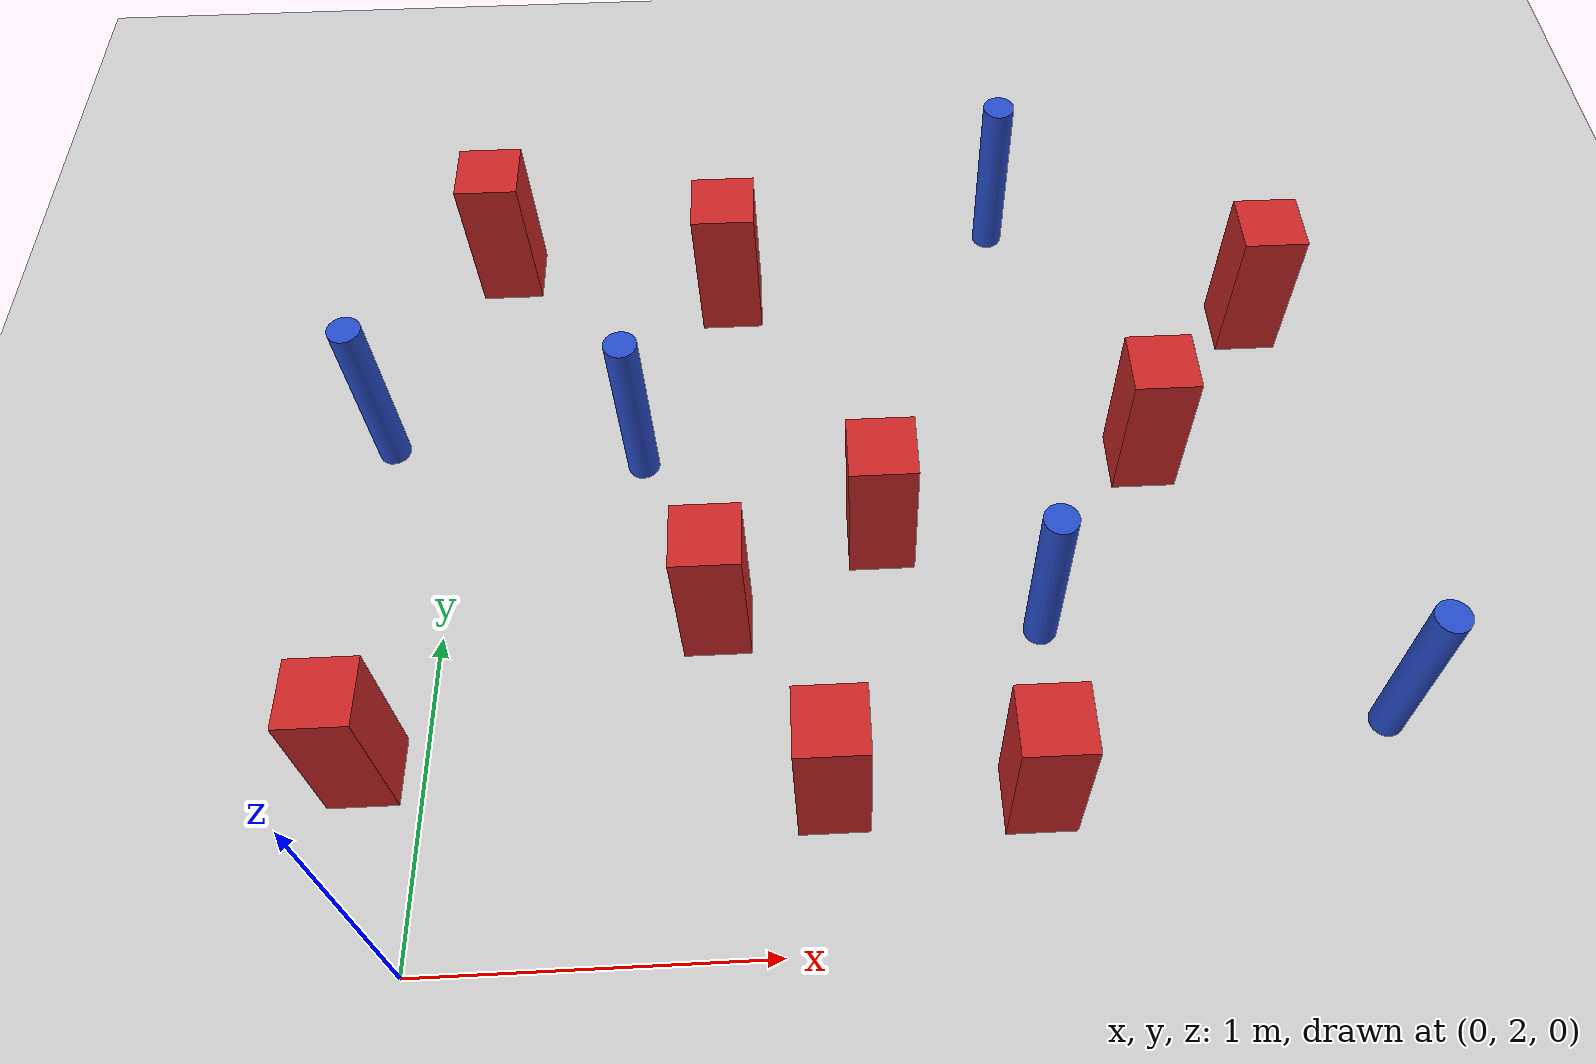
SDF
<sdf version="1.6">
 <world name="default">
  <model name="ground_plane">
   <static>1</static>
   <link name="link">
    <collision name="collision">
     <geometry><plane><normal>0 0 1</normal><size>100 100</size></plane></geometry>
     <surface><friction><ode><mu>100</mu><mu2>50</mu2></ode></friction></surface>
    </collision>
    <visual name="visual">
     <cast_shadows>0</cast_shadows>
     <geometry><plane><normal>0 0 1</normal><size>100 100</size></plane></geometry>
     <material>
      <ambient>1.0 1.0 1.0 1.0</ambient>
      <diffuse>0.8 0.8 0.8 1.0</diffuse>
      <specular>0.01 0.01 0.01 1.000000</specular>
     </material>
    </visual>
   </link>
  </model>
  <model name="square_post_obstacle3">
   <static>true</static>
   <pose>1.3197557422 3.28086362444 1.91545236811e-07 -7.35059704564e-06 1.12565212e-07 2.39332434364e-05</pose>
   <link name="link">
    <pose>0 0 0.25 0 -0 0</pose>
    <inertial>
     <mass>100</mass>
     <inertia>
      <ixx>0.166667</ixx>
      <ixy>0</ixy>
      <ixz>0</ixz>
      <iyy>0.166667</iyy>
      <iyz>0</iyz>
      <izz>0.166667</izz>
     </inertia>
    </inertial>
    <collision name="collision"><geometry><box><size>.2 .2 .5</size></box></geometry></collision>
    <visual name="visual">
     <geometry><box><size>.2 .2 .5</size></box></geometry>
     <material>
      <script><name>Gazebo/Red</name><uri>file://media/materials/scripts/gazebo.material</uri></script>
     </material>
    </visual>
   </link>
  </model>
  <model name="square_post_obstacle18">
   <static>true</static>
   <pose>0.0977057017905 4.46174153704 1.91545236811e-07 -7.35059704564e-06 1.12565212e-07 2.39332434364e-05</pose>
   <link name="link">
    <pose>0 0 0.25 0 -0 0</pose>
    <inertial>
     <mass>100</mass>
     <inertia>
      <ixx>0.166667</ixx>
      <ixy>0</ixy>
      <ixz>0</ixz>
      <iyy>0.166667</iyy>
      <iyz>0</iyz>
      <izz>0.166667</izz>
     </inertia>
    </inertial>
    <collision name="collision"><geometry><box><size>.2 .2 .5</size></box></geometry></collision>
    <visual name="visual">
     <geometry><box><size>.2 .2 .5</size></box></geometry>
     <material>
      <script><name>Gazebo/Red</name><uri>file://media/materials/scripts/gazebo.material</uri></script>
     </material>
    </visual>
   </link>
  </model>
  <model name="pole_obstacle62">
   <static>true</static>
   <pose>1.77789414145 2.94255412521 7.38925637345e-09 -8.47170692799e-08 1.24976765053e-08 -1.74513093017e-07</pose>
   <link name="link">
    <pose>0 0 0.3 0 -0 0</pose>
    <inertial>
     <mass>1</mass>
     <inertia><ixx>0.145833</ixx><ixy>0</ixy><ixz>0</ixz><iyy>0.145833</iyy><iyz>0</iyz><izz>0.125</izz></inertia>
    </inertial>
    <collision name="collision">
     <geometry><cylinder><radius>0.05</radius><length>.6</length></cylinder></geometry>
    </collision>
    <visual name="visual">
     <geometry><cylinder><radius>0.05</radius><length>.6</length></cylinder></geometry>
     <material>
      <script><name>Gazebo/Blue</name><uri>file://media/materials/scripts/gazebo.material</uri></script>
     </material>
    </visual>
   </link>
  </model>
  <model name="pole_obstacle82">
   <static>true</static>
   <pose>2.7356437907 2.59532253878 7.38925637345e-09 -8.47170692798e-08 1.24976764939e-08 -1.74513093025e-07</pose>
   <link name="link">
    <pose>0 0 0.3 0 -0 0</pose>
    <inertial>
     <mass>1</mass>
     <inertia><ixx>0.145833</ixx><ixy>0</ixy><ixz>0</ixz><iyy>0.145833</iyy><iyz>0</iyz><izz>0.125</izz></inertia>
    </inertial>
    <collision name="collision">
     <geometry><cylinder><radius>0.05</radius><length>.6</length></cylinder></geometry>
    </collision>
    <visual name="visual">
     <geometry><cylinder><radius>0.05</radius><length>.6</length></cylinder></geometry>
     <material>
      <script><name>Gazebo/Blue</name><uri>file://media/materials/scripts/gazebo.material</uri></script>
     </material>
    </visual>
   </link>
  </model>
  <model name="square_post_obstacle85">
   <static>true</static>
   <pose>2.60716563349 4.09937180237 1.91545236811e-07 -7.35059704564e-06 1.12565212e-07 2.39332434364e-05</pose>
   <link name="link">
    <pose>0 0 0.25 0 -0 0</pose>
    <inertial>
     <mass>100</mass>
     <inertia>
      <ixx>0.166667</ixx>
      <ixy>0</ixy>
      <ixz>0</ixz>
      <iyy>0.166667</iyy>
      <iyz>0</iyz>
      <izz>0.166667</izz>
     </inertia>
    </inertial>
    <collision name="collision"><geometry><box><size>.2 .2 .5</size></box></geometry></collision>
    <visual name="visual">
     <geometry><box><size>.2 .2 .5</size></box></geometry>
     <material>
      <script><name>Gazebo/Red</name><uri>file://media/materials/scripts/gazebo.material</uri></script>
     </material>
    </visual>
   </link>
  </model>
  <model name="square_post_obstacle86">
   <static>true</static>
   <pose>-0.163066882015 2.58072221107 1.91545236811e-07 -7.35059704564e-06 1.12565212e-07 2.39332434364e-05</pose>
   <link name="link">
    <pose>0 0 0.25 0 -0 0</pose>
    <inertial>
     <mass>100</mass>
     <inertia>
      <ixx>0.166667</ixx>
      <ixy>0</ixy>
      <ixz>0</ixz>
      <iyy>0.166667</iyy>
      <iyz>0</iyz>
      <izz>0.166667</izz>
     </inertia>
    </inertial>
    <collision name="collision"><geometry><box><size>.2 .2 .5</size></box></geometry></collision>
    <visual name="visual">
     <geometry><box><size>.2 .2 .5</size></box></geometry>
     <material>
      <script><name>Gazebo/Red</name><uri>file://media/materials/scripts/gazebo.material</uri></script>
     </material>
    </visual>
   </link>
  </model>
  <model name="pole_obstacle94">
   <static>true</static>
   <pose>1.77930428692 4.56713953124 7.38925637345e-09 -8.47170692799e-08 1.24976765033e-08 -1.74513093018e-07</pose>
   <link name="link">
    <pose>0 0 0.3 0 -0 0</pose>
    <inertial>
     <mass>1</mass>
     <inertia><ixx>0.145833</ixx><ixy>0</ixy><ixz>0</ixz><iyy>0.145833</iyy><iyz>0</iyz><izz>0.125</izz></inertia>
    </inertial>
    <collision name="collision">
     <geometry><cylinder><radius>0.05</radius><length>.6</length></cylinder></geometry>
    </collision>
    <visual name="visual">
     <geometry><cylinder><radius>0.05</radius><length>.6</length></cylinder></geometry>
     <material>
      <script><name>Gazebo/Blue</name><uri>file://media/materials/scripts/gazebo.material</uri></script>
     </material>
    </visual>
   </link>
  </model>
  <model name="square_post_obstacle93">
   <static>true</static>
   <pose>0.864168355828 4.28602983399 1.91545236811e-07 -7.35059704564e-06 1.12565212e-07 2.39332434364e-05</pose>
   <link name="link">
    <pose>0 0 0.25 0 -0 0</pose>
    <inertial>
     <mass>100</mass>
     <inertia>
      <ixx>0.166667</ixx>
      <ixy>0</ixy>
      <ixz>0</ixz>
      <iyy>0.166667</iyy>
      <iyz>0</iyz>
      <izz>0.166667</izz>
     </inertia>
    </inertial>
    <collision name="collision"><geometry><box><size>.2 .2 .5</size></box></geometry></collision>
    <visual name="visual">
     <geometry><box><size>.2 .2 .5</size></box></geometry>
     <material>
      <script><name>Gazebo/Red</name><uri>file://media/materials/scripts/gazebo.material</uri></script>
     </material>
    </visual>
   </link>
  </model>
  <model name="square_post_obstacle114">
   <static>true</static>
   <pose>1.70770236837 2.41016588496 1.91545236811e-07 -7.35059704564e-06 1.12565212e-07 2.39332434364e-05</pose>
   <link name="link">
    <pose>0 0 0.25 0 -0 0</pose>
    <inertial>
     <mass>100</mass>
     <inertia>
      <ixx>0.166667</ixx>
      <ixy>0</ixy>
      <ixz>0</ixz>
      <iyy>0.166667</iyy>
      <iyz>0</iyz>
      <izz>0.166667</izz>
     </inertia>
    </inertial>
    <collision name="collision"><geometry><box><size>.2 .2 .5</size></box></geometry></collision>
    <visual name="visual">
     <geometry><box><size>.2 .2 .5</size></box></geometry>
     <material>
      <script><name>Gazebo/Red</name><uri>file://media/materials/scripts/gazebo.material</uri></script>
     </material>
    </visual>
   </link>
  </model>
  <model name="square_post_obstacle117">
   <static>true</static>
   <pose>1.14015338134 2.43655851726 1.91545236811e-07 -7.35059704564e-06 1.12565212e-07 2.39332434364e-05</pose>
   <link name="link">
    <pose>0 0 0.25 0 -0 0</pose>
    <inertial>
     <mass>100</mass>
     <inertia>
      <ixx>0.166667</ixx>
      <ixy>0</ixy>
      <ixz>0</ixz>
      <iyy>0.166667</iyy>
      <iyz>0</iyz>
      <izz>0.166667</izz>
     </inertia>
    </inertial>
    <collision name="collision"><geometry><box><size>.2 .2 .5</size></box></geometry></collision>
    <visual name="visual">
     <geometry><box><size>.2 .2 .5</size></box></geometry>
     <material>
      <script><name>Gazebo/Red</name><uri>file://media/materials/scripts/gazebo.material</uri></script>
     </material>
    </visual>
   </link>
  </model>
  <model name="square_post_obstacle119">
   <static>true</static>
   <pose>0.818690155547 3.00788359256 1.91545236811e-07 -7.35059704564e-06 1.12565212e-07 2.39332434364e-05</pose>
   <link name="link">
    <pose>0 0 0.25 0 -0 0</pose>
    <inertial>
     <mass>100</mass>
     <inertia>
      <ixx>0.166667</ixx>
      <ixy>0</ixy>
      <ixz>0</ixz>
      <iyy>0.166667</iyy>
      <iyz>0</iyz>
      <izz>0.166667</izz>
     </inertia>
    </inertial>
    <collision name="collision"><geometry><box><size>.2 .2 .5</size></box></geometry></collision>
    <visual name="visual">
     <geometry><box><size>.2 .2 .5</size></box></geometry>
     <material>
      <script><name>Gazebo/Red</name><uri>file://media/materials/scripts/gazebo.material</uri></script>
     </material>
    </visual>
   </link>
  </model>
  <model name="square_post_obstacle143">
   <static>true</static>
   <pose>2.17059117664 3.54823367026 1.91545236811e-07 -7.35059704564e-06 1.12565212e-07 2.39332434364e-05</pose>
   <link name="link">
    <pose>0 0 0.25 0 -0 0</pose>
    <inertial>
     <mass>100</mass>
     <inertia>
      <ixx>0.166667</ixx>
      <ixy>0</ixy>
      <ixz>0</ixz>
      <iyy>0.166667</iyy>
      <iyz>0</iyz>
      <izz>0.166667</izz>
     </inertia>
    </inertial>
    <collision name="collision"><geometry><box><size>.2 .2 .5</size></box></geometry></collision>
    <visual name="visual">
     <geometry><box><size>.2 .2 .5</size></box></geometry>
     <material>
      <script><name>Gazebo/Red</name><uri>file://media/materials/scripts/gazebo.material</uri></script>
     </material>
    </visual>
   </link>
  </model>
  <model name="pole_obstacle163">
   <static>true</static>
   <pose>-0.230195207265 3.70756932335 7.38925637345e-09 -8.47170692792e-08 1.24976764353e-08 -1.74513093043e-07</pose>
   <link name="link">
    <pose>0 0 0.3 0 -0 0</pose>
    <inertial>
     <mass>1</mass>
     <inertia><ixx>0.145833</ixx><ixy>0</ixy><ixz>0</ixz><iyy>0.145833</iyy><iyz>0</iyz><izz>0.125</izz></inertia>
    </inertial>
    <collision name="collision">
     <geometry><cylinder><radius>0.05</radius><length>.6</length></cylinder></geometry>
    </collision>
    <visual name="visual">
     <geometry><cylinder><radius>0.05</radius><length>.6</length></cylinder></geometry>
     <material>
      <script><name>Gazebo/Blue</name><uri>file://media/materials/scripts/gazebo.material</uri></script>
     </material>
    </visual>
   </link>
  </model>
  <model name="pole_obstacle169">
   <static>true</static>
   <pose>0.577115433787 3.60987262973 7.38925637345e-09 -8.47170692799e-08 1.2497676509e-08 -1.74513093016e-07</pose>
   <link name="link">
    <pose>0 0 0.3 0 -0 0</pose>
    <inertial>
     <mass>1</mass>
     <inertia><ixx>0.145833</ixx><ixy>0</ixy><ixz>0</ixz><iyy>0.145833</iyy><iyz>0</iyz><izz>0.125</izz></inertia>
    </inertial>
    <collision name="collision">
     <geometry><cylinder><radius>0.05</radius><length>.6</length></cylinder></geometry>
    </collision>
    <visual name="visual">
     <geometry><cylinder><radius>0.05</radius><length>.6</length></cylinder></geometry>
     <material>
      <script><name>Gazebo/Blue</name><uri>file://media/materials/scripts/gazebo.material</uri></script>
     </material>
    </visual>
   </link>
  </model>
 </world>
</sdf>
